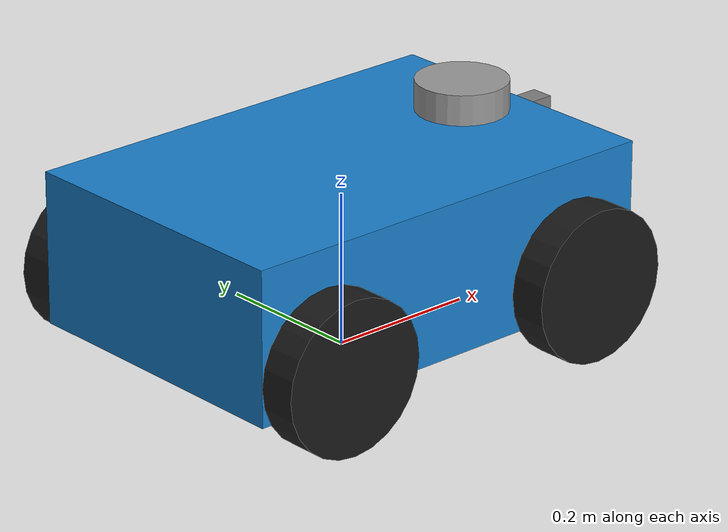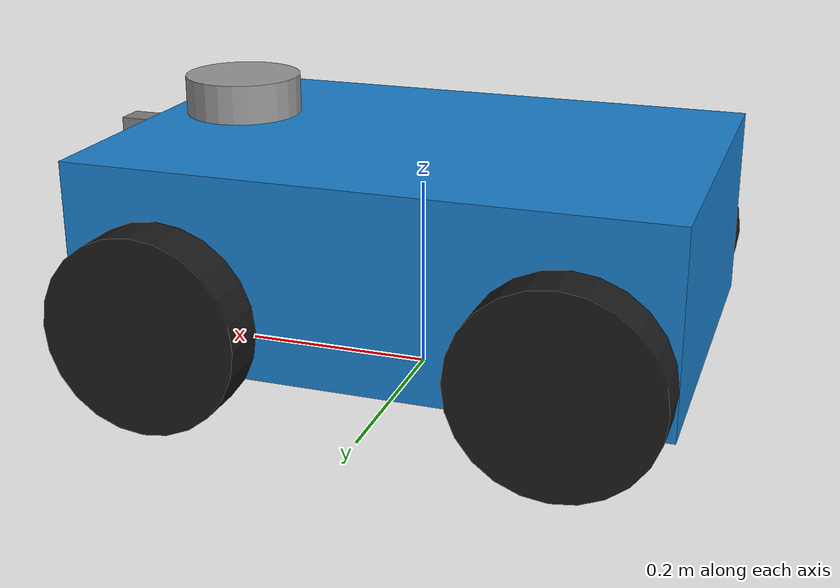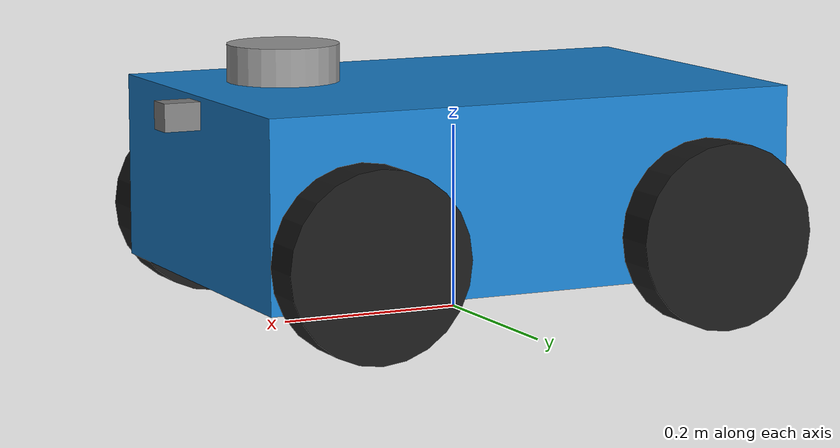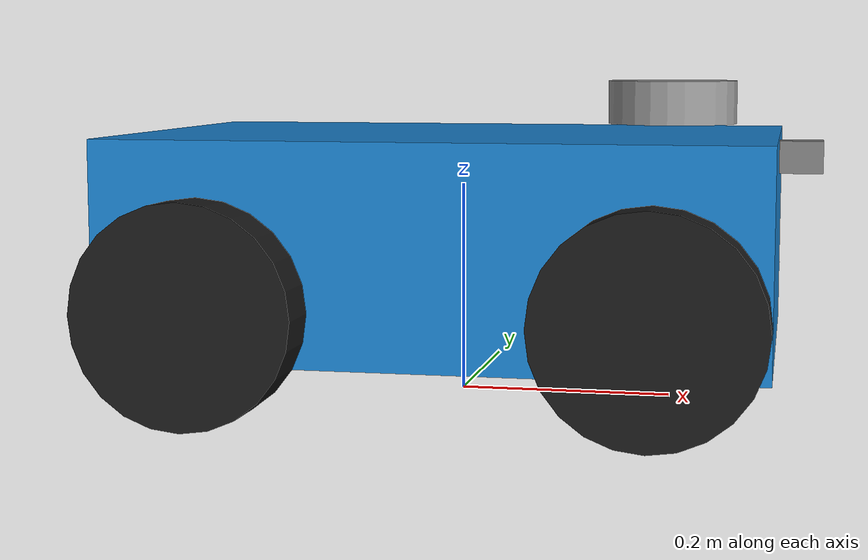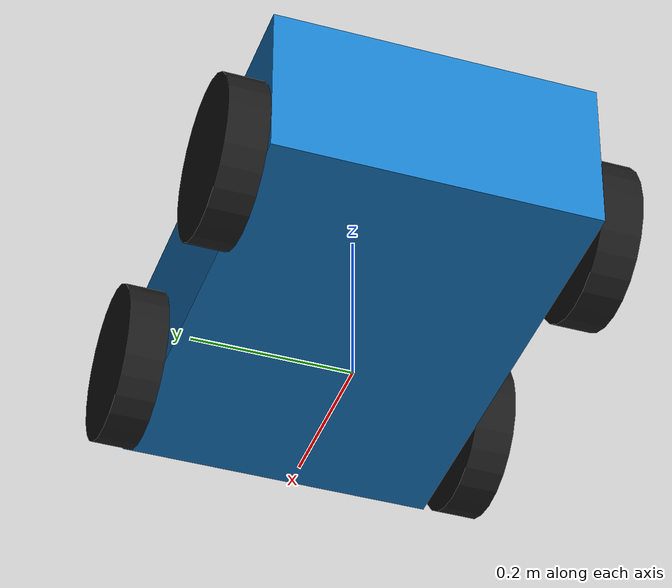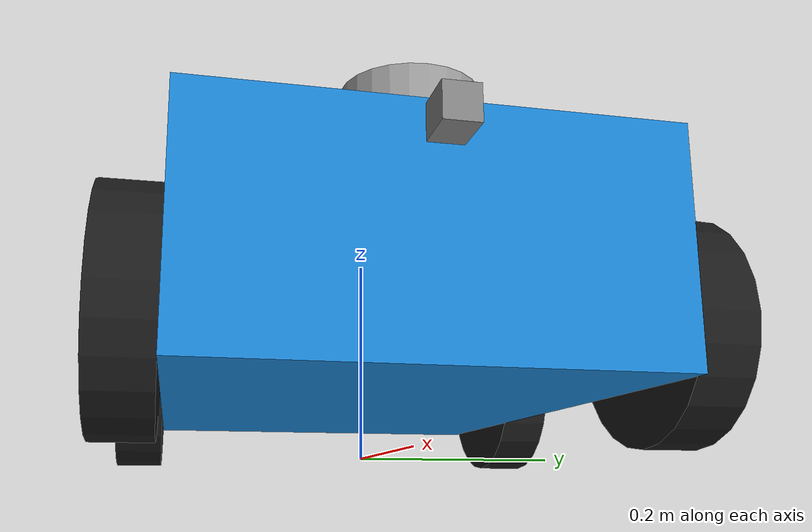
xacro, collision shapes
<?xml version="1.0"?>
<robot name="four_wheel_robot" xmlns:xacro="http://www.ros.org/wiki/xacro">
<xacro:include filename="$(find my_robot_description)/urdf/robot_description.gazebo"/>

<xacro:arg name="mesh_path" default="package://my_robot_description/meshes/"/>

  <xacro:property name="base_length" value="0.6"/>
  <xacro:property name="base_width" value="0.4"/>
  <xacro:property name="base_height" value="0.2"/>
  <xacro:property name="base_mass" value="5.0"/>

  <xacro:property name="wheel_radius" value="0.1"/>
  <xacro:property name="wheel_width" value="0.05"/>
  <xacro:property name="wheel_mass" value="0.5"/>

  <xacro:property name="wheel_x_offset" value="0.2"/>
  <xacro:property name="wheel_y_offset" value="0.225"/>
  <xacro:property name="wheel_z_offset" value="-0.05"/>

  <link name="base_footprint"/>

  <joint name="base_footprint_joint" type="fixed">
    <parent link="base_footprint"/>
    <child link="base_link"/>
    <origin xyz="0 0 0.15" rpy="0 0 0"/>
  </joint>

  <link name="base_link">
    <visual>
      <geometry>
        <box size="${base_length} ${base_width} ${base_height}"/>
      </geometry>
      <material name="chassis_color">
        <color rgba="0.1 0.5 0.8 1.0"/>
      </material>
    </visual>
    <collision>
      <geometry>
        <box size="${base_length} ${base_width} ${base_height}"/>
      </geometry>
    </collision>
    <inertial>
      <mass value="${base_mass}"/>
      <origin xyz="0 0 0" rpy="0 0 0"/>
      <inertia ixx="${(1/12) * base_mass * (base_width*base_width + base_height*base_height)}" ixy="0.0" ixz="0.0"
               iyy="${(1/12) * base_mass * (base_length*base_length + base_height*base_height)}" iyz="0.0"
               izz="${(1/12) * base_mass * (base_length*base_length + base_width*base_width)}"/>
    </inertial>
  </link>

  <!-- LIDAR LINK - OUTSIDE MACRO (only created once) -->
  <link name="lidar_link">
    <visual>
      <origin xyz="0 0 0" rpy="0 0 0"/>
      <geometry>
        <mesh filename="$(arg mesh_path)lidar.STL"/>
      </geometry>
      <material name="lidar_gray">
        <color rgba="0.6 0.6 0.6 1.0"/>
      </material>
    </visual>
    <collision>
      <origin xyz="0 0 0" rpy="0 0 0"/>
      <geometry>
        <cylinder radius="0.06" length="0.04"/>
      </geometry>
    </collision>
    <inertial>
      <mass value="0.2"/>
      <origin xyz="0 0 0" rpy="0 0 0"/>
      <inertia ixx="0.0001" ixy="0.0" ixz="0.0"
               iyy="0.0001" iyz="0.0"
               izz="0.0001"/>
    </inertial>
  </link>

  <joint name="lidar_joint" type="fixed">
    <parent link="base_link"/>
    <child link="lidar_link"/>
    <origin xyz="0.2 0 0.13" rpy="0 0 0"/>
  </joint>

  <link name="camera_link">
  <visual>
    <origin xyz="0 0 0" rpy="0 0 0"/>
    <geometry>
      <mesh filename="$(arg mesh_path)zed.stl"/>
    </geometry>
    <material name="camera_black">
      <color rgba="0.5 0.5 0.5 1.0"/>
    </material>
  </visual>
  <collision>
    <origin xyz="0 0 0" rpy="0 0 0"/>
    <geometry>
      <box size="0.08 0.03 0.03"/>
    </geometry>
  </collision>
  <inertial>
    <mass value="0.1"/>
    <origin xyz="0 0 0" rpy="0 0 0"/>
    <inertia ixx="0.00005" ixy="0.0" ixz="0.0"
             iyy="0.00005" iyz="0.0"
             izz="0.00005"/>
  </inertial>
</link>

<joint name="camera_joint" type="fixed">
  <parent link="base_link"/>
  <child link="camera_link"/>
  <origin xyz="0.3 0 0.08" rpy="0 0 0"/>
</joint>
<link name="camera_optical_link"/>

<joint name="camera_optical_joint" type="fixed">
  <parent link="camera_link"/>
  <child link="camera_optical_link"/>
  <origin xyz="0 0 0" rpy="-1.5708 0 -1.5708"/>
</joint>

  <!-- WHEEL MACRO (without lidar inside) -->
  <xacro:macro name="wheel" params="prefix x_reflect y_reflect">
    <joint name="${prefix}_wheel_joint" type="continuous">
      <parent link="base_link"/>
      <child link="${prefix}_wheel_link"/>
      <origin xyz="${x_reflect * wheel_x_offset} ${y_reflect * wheel_y_offset} ${wheel_z_offset}" rpy="0 0 0"/>
      <axis xyz="0 1 0"/>
    </joint>

    <link name="${prefix}_wheel_link">
      <visual>
        <origin xyz="0 0 0" rpy="${pi/2} 0 0"/>
        <geometry>
          <cylinder radius="${wheel_radius}" length="${wheel_width}"/>
        </geometry>
        <material name="wheel_color">
          <color rgba="0.1 0.1 0.1 1.0"/>
        </material>
      </visual>
      <collision>
        <origin xyz="0 0 0" rpy="${pi/2} 0 0"/>
        <geometry>
          <cylinder radius="${wheel_radius}" length="${wheel_width}"/>
        </geometry>
      </collision>
      <inertial>
        <mass value="${wheel_mass}"/>
        <origin xyz="0 0 0" rpy="${pi/2} 0 0"/>
        <inertia ixx="${(1/12) * wheel_mass * (3*wheel_radius*wheel_radius + wheel_width*wheel_width)}" ixy="0.0" ixz="0.0"
                 iyy="${(1/12) * wheel_mass * (3*wheel_radius*wheel_radius + wheel_width*wheel_width)}" iyz="0.0"
                 izz="${(1/2) * wheel_mass * (wheel_radius*wheel_radius)}"/>
      </inertial>
    </link>
  </xacro:macro>

  <xacro:wheel prefix="front_left"  x_reflect="1"  y_reflect="1" />
  <xacro:wheel prefix="front_right" x_reflect="1"  y_reflect="-1" />
  <xacro:wheel prefix="rear_left"   x_reflect="-1" y_reflect="1" />
  <xacro:wheel prefix="rear_right"  x_reflect="-1" y_reflect="-1" />

</robot>
